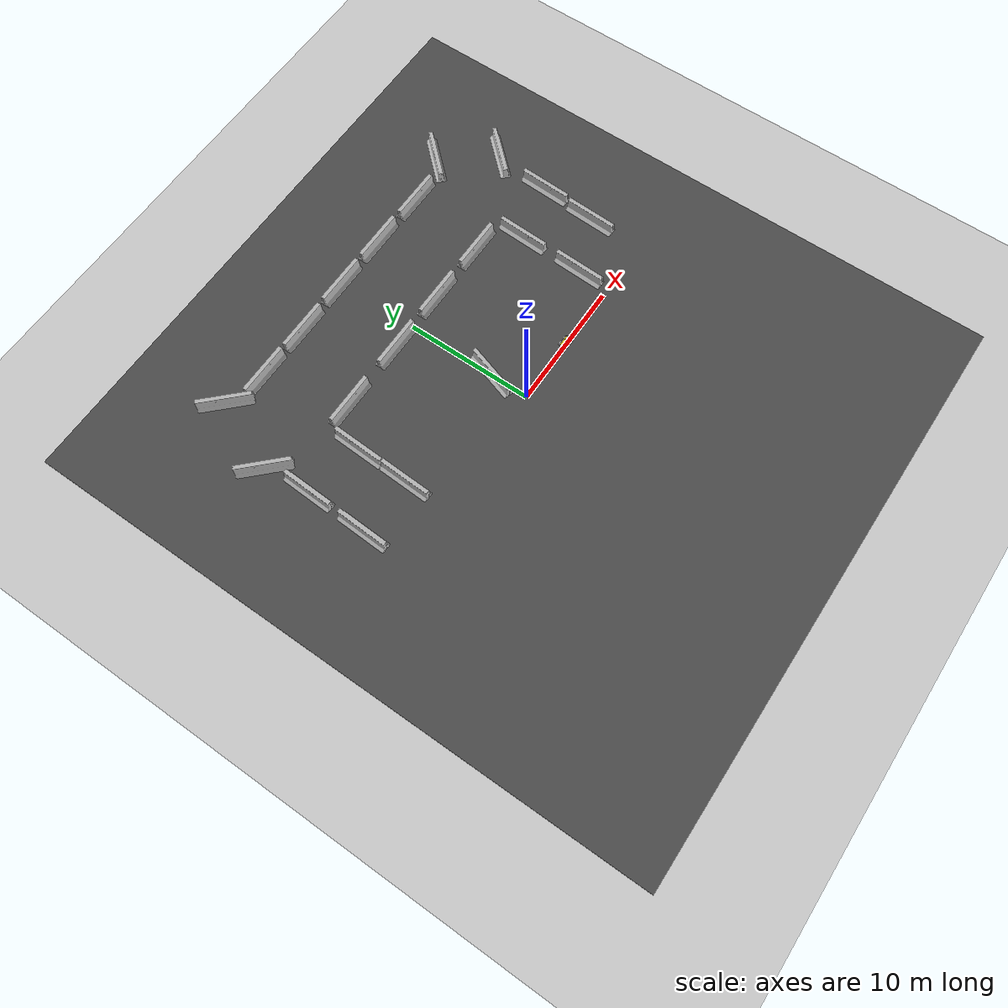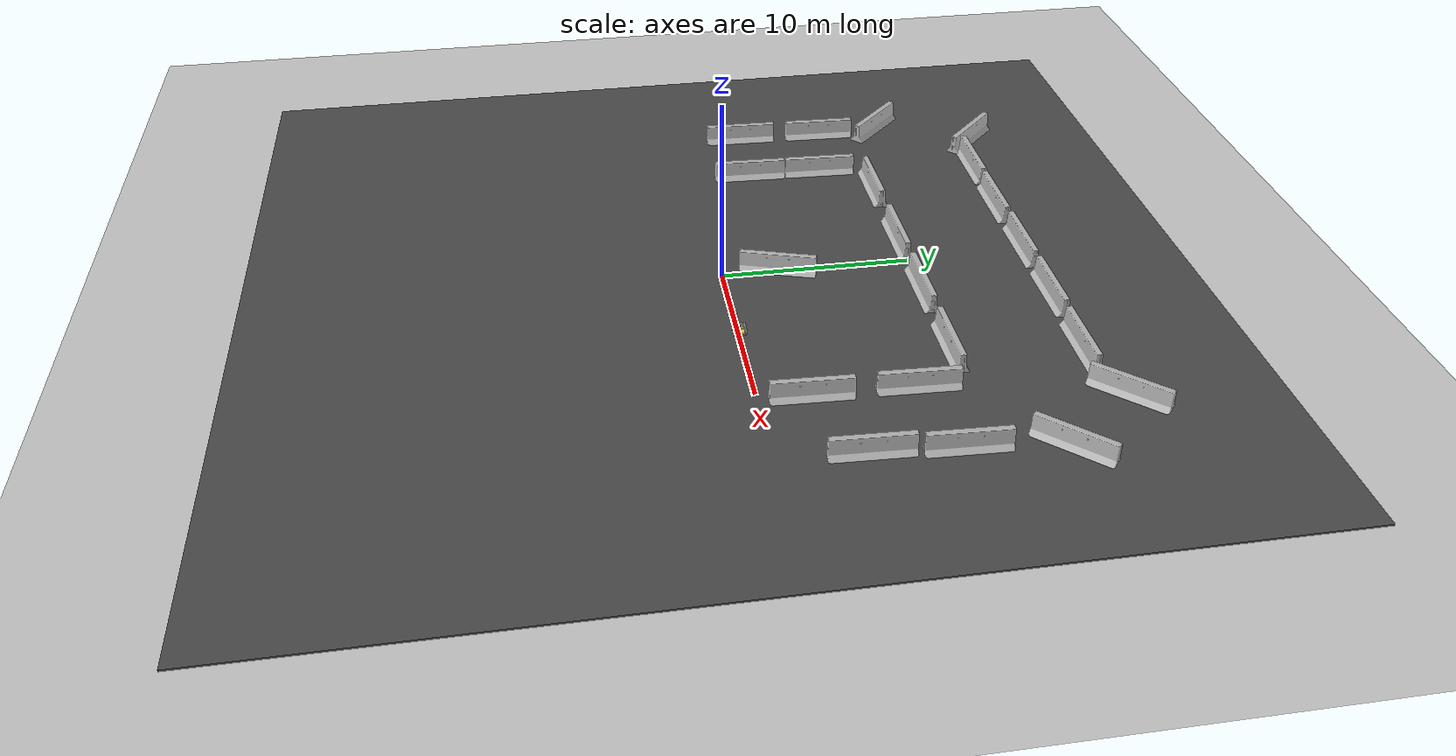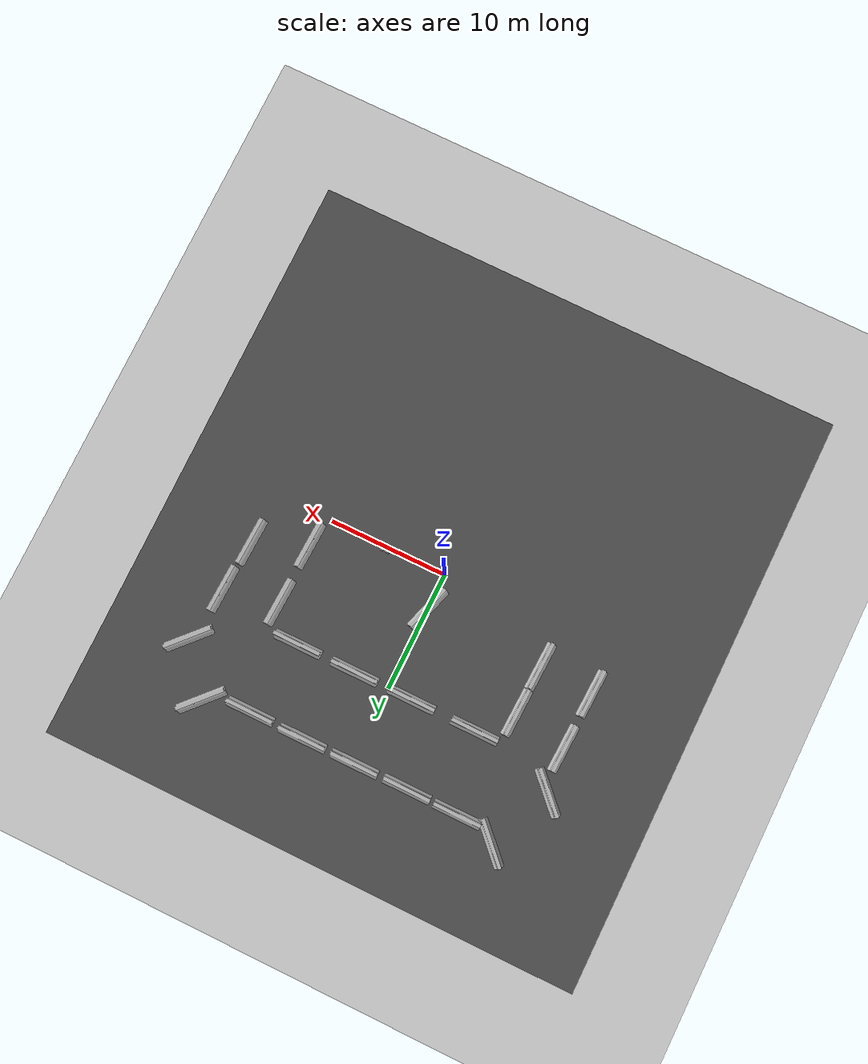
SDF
<sdf version="1.6">
 <world name="default">
  <model name="ground_plane">
   <static>1</static>
   <link name="link">
    <collision name="collision">
     <geometry><plane><normal>0 0 1</normal><size>100 100</size></plane></geometry>
     <surface><friction><ode><mu>100</mu><mu2>50</mu2></ode></friction></surface>
    </collision>
    <visual name="visual">
     <cast_shadows>0</cast_shadows>
     <geometry><plane><normal>0 0 1</normal><size>100 100</size></plane></geometry>
     <material>
      <script><uri>file://media/materials/scripts/gazebo.material</uri><name>Gazebo/Grey</name></script>
     </material>
    </visual>
    <velocity_decay><linear>0</linear><angular>0</angular></velocity_decay>
   </link>
  </model>
  <model name="jersey_barrier_3">
   <static>1</static>
   <link name="link">
    <visual name="visual">
     <geometry><mesh><uri>model://jersey_barrier/meshes/jersey_barrier.dae</uri></mesh></geometry>
    </visual>
    <collision name="upright">
     <pose>0 0 0.5715 0 -0 0</pose>
     <geometry><box><size>4.06542 0.3063 1.143</size></box></geometry>
    </collision>
    <collision name="base">
     <pose>0 0 0.032258 0 -0 0</pose>
     <geometry><box><size>4.06542 0.8107 0.064516</size></box></geometry>
    </collision>
    <collision name="base2">
     <pose>0 0 0.1 0 -0 0</pose>
     <geometry><box><size>4.06542 0.65 0.1</size></box></geometry>
    </collision>
    <collision name="base3">
     <pose>0 0 0.2 0 -0 0</pose>
     <geometry><box><size>4.06542 0.5 0.1</size></box></geometry>
    </collision>
    <collision name="left-angle">
     <pose>0 -0.224 0.2401 0.9 -0 0</pose>
     <geometry><box><size>4.06542 0.5 0.064516</size></box></geometry>
    </collision>
    <collision name="right-angle">
     <pose>0 0.224 0.2401 -0.9 0 0</pose>
     <geometry><box><size>4.06542 0.5 0.064516</size></box></geometry>
    </collision>
    <velocity_decay><linear>0</linear><angular>0</angular></velocity_decay>
   </link>
   <pose>-7.50675 10 0 0 -0 0</pose>
  </model>
  <model name="jersey_barrier_4">
   <static>1</static>
   <link name="link">
    <visual name="visual">
     <geometry><mesh><uri>model://jersey_barrier/meshes/jersey_barrier.dae</uri></mesh></geometry>
    </visual>
    <collision name="upright">
     <pose>0 0 0.5715 0 -0 0</pose>
     <geometry><box><size>4.06542 0.3063 1.143</size></box></geometry>
    </collision>
    <collision name="base">
     <pose>0 0 0.032258 0 -0 0</pose>
     <geometry><box><size>4.06542 0.8107 0.064516</size></box></geometry>
    </collision>
    <collision name="base2">
     <pose>0 0 0.1 0 -0 0</pose>
     <geometry><box><size>4.06542 0.65 0.1</size></box></geometry>
    </collision>
    <collision name="base3">
     <pose>0 0 0.2 0 -0 0</pose>
     <geometry><box><size>4.06542 0.5 0.1</size></box></geometry>
    </collision>
    <collision name="left-angle">
     <pose>0 -0.224 0.2401 0.9 -0 0</pose>
     <geometry><box><size>4.06542 0.5 0.064516</size></box></geometry>
    </collision>
    <collision name="right-angle">
     <pose>0 0.224 0.2401 -0.9 0 0</pose>
     <geometry><box><size>4.06542 0.5 0.064516</size></box></geometry>
    </collision>
    <velocity_decay><linear>0</linear><angular>0</angular></velocity_decay>
   </link>
   <pose>-2 10 0 0 -0 0</pose>
  </model>
  <model name="jersey_barrier_5">
   <static>1</static>
   <link name="link">
    <visual name="visual">
     <geometry><mesh><uri>model://jersey_barrier/meshes/jersey_barrier.dae</uri></mesh></geometry>
    </visual>
    <collision name="upright">
     <pose>0 0 0.5715 0 -0 0</pose>
     <geometry><box><size>4.06542 0.3063 1.143</size></box></geometry>
    </collision>
    <collision name="base">
     <pose>0 0 0.032258 0 -0 0</pose>
     <geometry><box><size>4.06542 0.8107 0.064516</size></box></geometry>
    </collision>
    <collision name="base2">
     <pose>0 0 0.1 0 -0 0</pose>
     <geometry><box><size>4.06542 0.65 0.1</size></box></geometry>
    </collision>
    <collision name="base3">
     <pose>0 0 0.2 0 -0 0</pose>
     <geometry><box><size>4.06542 0.5 0.1</size></box></geometry>
    </collision>
    <collision name="left-angle">
     <pose>0 -0.224 0.2401 0.9 -0 0</pose>
     <geometry><box><size>4.06542 0.5 0.064516</size></box></geometry>
    </collision>
    <collision name="right-angle">
     <pose>0 0.224 0.2401 -0.9 0 0</pose>
     <geometry><box><size>4.06542 0.5 0.064516</size></box></geometry>
    </collision>
    <velocity_decay><linear>0</linear><angular>0</angular></velocity_decay>
   </link>
   <pose>3 10 0 0 -0 0</pose>
  </model>
  <model name="jersey_barrier_6">
   <static>1</static>
   <link name="link">
    <visual name="visual">
     <geometry><mesh><uri>model://jersey_barrier/meshes/jersey_barrier.dae</uri></mesh></geometry>
    </visual>
    <collision name="upright">
     <pose>0 0 0.5715 0 -0 0</pose>
     <geometry><box><size>4.06542 0.3063 1.143</size></box></geometry>
    </collision>
    <collision name="base">
     <pose>0 0 0.032258 0 -0 0</pose>
     <geometry><box><size>4.06542 0.8107 0.064516</size></box></geometry>
    </collision>
    <collision name="base2">
     <pose>0 0 0.1 0 -0 0</pose>
     <geometry><box><size>4.06542 0.65 0.1</size></box></geometry>
    </collision>
    <collision name="base3">
     <pose>0 0 0.2 0 -0 0</pose>
     <geometry><box><size>4.06542 0.5 0.1</size></box></geometry>
    </collision>
    <collision name="left-angle">
     <pose>0 -0.224 0.2401 0.9 -0 0</pose>
     <geometry><box><size>4.06542 0.5 0.064516</size></box></geometry>
    </collision>
    <collision name="right-angle">
     <pose>0 0.224 0.2401 -0.9 0 0</pose>
     <geometry><box><size>4.06542 0.5 0.064516</size></box></geometry>
    </collision>
    <velocity_decay><linear>0</linear><angular>0</angular></velocity_decay>
   </link>
   <pose>8 10 0 0 -0 0</pose>
  </model>
  <model name="asphalt_plane">
   <static>1</static>
   <link name="link">
    <collision name="collision"><geometry><box><size>45.6368 49.6066 0.1</size></box></geometry></collision>
    <visual name="visual">
     <cast_shadows>0</cast_shadows>
     <geometry><box><size>45.6368 49.6066 0.1</size></box></geometry>
     <material>
      <script>
       <uri>model://asphalt_plane/materials/scripts</uri>
       <uri>model://asphalt_plane/materials/textures</uri>
       <name>vrc/asphalt</name>
      </script>
     </material>
    </visual>
    <velocity_decay><linear>0</linear><angular>0</angular></velocity_decay>
   </link>
   <pose>-0.123803 0.022176 0 0 -0 0</pose>
  </model>
  <model name="jersey_barrier_7_clone_0">
   <static>1</static>
   <link name="link">
    <visual name="visual">
     <geometry><mesh><uri>model://jersey_barrier/meshes/jersey_barrier.dae</uri></mesh></geometry>
    </visual>
    <collision name="upright">
     <pose>0 0 0.5715 0 -0 0</pose>
     <geometry><box><size>4.06542 0.3063 1.143</size></box></geometry>
    </collision>
    <collision name="base">
     <pose>0 0 0.032258 0 -0 0</pose>
     <geometry><box><size>4.06542 0.8107 0.064516</size></box></geometry>
    </collision>
    <collision name="base2">
     <pose>0 0 0.1 0 -0 0</pose>
     <geometry><box><size>4.06542 0.65 0.1</size></box></geometry>
    </collision>
    <collision name="base3">
     <pose>0 0 0.2 0 -0 0</pose>
     <geometry><box><size>4.06542 0.5 0.1</size></box></geometry>
    </collision>
    <collision name="left-angle">
     <pose>0 -0.224 0.2401 0.9 -0 0</pose>
     <geometry><box><size>4.06542 0.5 0.064516</size></box></geometry>
    </collision>
    <collision name="right-angle">
     <pose>0 0.224 0.2401 -0.9 0 0</pose>
     <geometry><box><size>4.06542 0.5 0.064516</size></box></geometry>
    </collision>
   </link>
   <pose>10.7124 2.55807 0 0 -0 1.5316</pose>
  </model>
  <model name="jersey_barrier_7_clone_1">
   <static>1</static>
   <link name="link">
    <visual name="visual">
     <geometry><mesh><uri>model://jersey_barrier/meshes/jersey_barrier.dae</uri></mesh></geometry>
    </visual>
    <collision name="upright">
     <pose>0 0 0.5715 0 -0 0</pose>
     <geometry><box><size>4.06542 0.3063 1.143</size></box></geometry>
    </collision>
    <collision name="base">
     <pose>0 0 0.032258 0 -0 0</pose>
     <geometry><box><size>4.06542 0.8107 0.064516</size></box></geometry>
    </collision>
    <collision name="base2">
     <pose>0 0 0.1 0 -0 0</pose>
     <geometry><box><size>4.06542 0.65 0.1</size></box></geometry>
    </collision>
    <collision name="base3">
     <pose>0 0 0.2 0 -0 0</pose>
     <geometry><box><size>4.06542 0.5 0.1</size></box></geometry>
    </collision>
    <collision name="left-angle">
     <pose>0 -0.224 0.2401 0.9 -0 0</pose>
     <geometry><box><size>4.06542 0.5 0.064516</size></box></geometry>
    </collision>
    <collision name="right-angle">
     <pose>0 0.224 0.2401 -0.9 0 0</pose>
     <geometry><box><size>4.06542 0.5 0.064516</size></box></geometry>
    </collision>
   </link>
   <pose>10.8167 7.65912 0 0 -0 1.5316</pose>
  </model>
  <model name="jersey_barrier_7_clone_1_clone">
   <static>1</static>
   <link name="link">
    <visual name="visual">
     <geometry><mesh><uri>model://jersey_barrier/meshes/jersey_barrier.dae</uri></mesh></geometry>
    </visual>
    <collision name="upright">
     <pose>0 0 0.5715 0 -0 0</pose>
     <geometry><box><size>4.06542 0.3063 1.143</size></box></geometry>
    </collision>
    <collision name="base">
     <pose>0 0 0.032258 0 -0 0</pose>
     <geometry><box><size>4.06542 0.8107 0.064516</size></box></geometry>
    </collision>
    <collision name="base2">
     <pose>0 0 0.1 0 -0 0</pose>
     <geometry><box><size>4.06542 0.65 0.1</size></box></geometry>
    </collision>
    <collision name="base3">
     <pose>0 0 0.2 0 -0 0</pose>
     <geometry><box><size>4.06542 0.5 0.1</size></box></geometry>
    </collision>
    <collision name="left-angle">
     <pose>0 -0.224 0.2401 0.9 -0 0</pose>
     <geometry><box><size>4.06542 0.5 0.064516</size></box></geometry>
    </collision>
    <collision name="right-angle">
     <pose>0 0.224 0.2401 -0.9 0 0</pose>
     <geometry><box><size>4.06542 0.5 0.064516</size></box></geometry>
    </collision>
   </link>
   <pose>-9.88681 7.31742 0 0 -0 1.5316</pose>
  </model>
  <model name="jersey_barrier_7_clone_1_clone_1">
   <static>1</static>
   <link name="link">
    <visual name="visual">
     <geometry><mesh><uri>model://jersey_barrier/meshes/jersey_barrier.dae</uri></mesh></geometry>
    </visual>
    <collision name="upright">
     <pose>0 0 0.5715 0 -0 0</pose>
     <geometry><box><size>4.06542 0.3063 1.143</size></box></geometry>
    </collision>
    <collision name="base">
     <pose>0 0 0.032258 0 -0 0</pose>
     <geometry><box><size>4.06542 0.8107 0.064516</size></box></geometry>
    </collision>
    <collision name="base2">
     <pose>0 0 0.1 0 -0 0</pose>
     <geometry><box><size>4.06542 0.65 0.1</size></box></geometry>
    </collision>
    <collision name="base3">
     <pose>0 0 0.2 0 -0 0</pose>
     <geometry><box><size>4.06542 0.5 0.1</size></box></geometry>
    </collision>
    <collision name="left-angle">
     <pose>0 -0.224 0.2401 0.9 -0 0</pose>
     <geometry><box><size>4.06542 0.5 0.064516</size></box></geometry>
    </collision>
    <collision name="right-angle">
     <pose>0 0.224 0.2401 -0.9 0 0</pose>
     <geometry><box><size>4.06542 0.5 0.064516</size></box></geometry>
    </collision>
   </link>
   <pose>-14.3801 8.23059 0 0 -0 1.5316</pose>
  </model>
  <model name="jersey_barrier_7_clone_1_clone_2">
   <static>1</static>
   <link name="link">
    <visual name="visual">
     <geometry><mesh><uri>model://jersey_barrier/meshes/jersey_barrier.dae</uri></mesh></geometry>
    </visual>
    <collision name="upright">
     <pose>0 0 0.5715 0 -0 0</pose>
     <geometry><box><size>4.06542 0.3063 1.143</size></box></geometry>
    </collision>
    <collision name="base">
     <pose>0 0 0.032258 0 -0 0</pose>
     <geometry><box><size>4.06542 0.8107 0.064516</size></box></geometry>
    </collision>
    <collision name="base2">
     <pose>0 0 0.1 0 -0 0</pose>
     <geometry><box><size>4.06542 0.65 0.1</size></box></geometry>
    </collision>
    <collision name="base3">
     <pose>0 0 0.2 0 -0 0</pose>
     <geometry><box><size>4.06542 0.5 0.1</size></box></geometry>
    </collision>
    <collision name="left-angle">
     <pose>0 -0.224 0.2401 0.9 -0 0</pose>
     <geometry><box><size>4.06542 0.5 0.064516</size></box></geometry>
    </collision>
    <collision name="right-angle">
     <pose>0 0.224 0.2401 -0.9 0 0</pose>
     <geometry><box><size>4.06542 0.5 0.064516</size></box></geometry>
    </collision>
   </link>
   <pose>-14.5541 3.41634 0 0 -0 1.5316</pose>
  </model>
  <model name="jersey_barrier_6_clone">
   <static>1</static>
   <link name="link">
    <visual name="visual">
     <geometry><mesh><uri>model://jersey_barrier/meshes/jersey_barrier.dae</uri></mesh></geometry>
    </visual>
    <collision name="upright">
     <pose>0 0 0.5715 0 -0 0</pose>
     <geometry><box><size>4.06542 0.3063 1.143</size></box></geometry>
    </collision>
    <collision name="base">
     <pose>0 0 0.032258 0 -0 0</pose>
     <geometry><box><size>4.06542 0.8107 0.064516</size></box></geometry>
    </collision>
    <collision name="base2">
     <pose>0 0 0.1 0 -0 0</pose>
     <geometry><box><size>4.06542 0.65 0.1</size></box></geometry>
    </collision>
    <collision name="base3">
     <pose>0 0 0.2 0 -0 0</pose>
     <geometry><box><size>4.06542 0.5 0.1</size></box></geometry>
    </collision>
    <collision name="left-angle">
     <pose>0 -0.224 0.2401 0.9 -0 0</pose>
     <geometry><box><size>4.06542 0.5 0.064516</size></box></geometry>
    </collision>
    <collision name="right-angle">
     <pose>0 0.224 0.2401 -0.9 0 0</pose>
     <geometry><box><size>4.06542 0.5 0.064516</size></box></geometry>
    </collision>
    <velocity_decay><linear>0</linear><angular>0</angular></velocity_decay>
   </link>
   <pose>8.97438 16.3625 0 0 -0 0</pose>
  </model>
  <model name="jersey_barrier_6_clone_0">
   <static>1</static>
   <link name="link">
    <visual name="visual">
     <geometry><mesh><uri>model://jersey_barrier/meshes/jersey_barrier.dae</uri></mesh></geometry>
    </visual>
    <collision name="upright">
     <pose>0 0 0.5715 0 -0 0</pose>
     <geometry><box><size>4.06542 0.3063 1.143</size></box></geometry>
    </collision>
    <collision name="base">
     <pose>0 0 0.032258 0 -0 0</pose>
     <geometry><box><size>4.06542 0.8107 0.064516</size></box></geometry>
    </collision>
    <collision name="base2">
     <pose>0 0 0.1 0 -0 0</pose>
     <geometry><box><size>4.06542 0.65 0.1</size></box></geometry>
    </collision>
    <collision name="base3">
     <pose>0 0 0.2 0 -0 0</pose>
     <geometry><box><size>4.06542 0.5 0.1</size></box></geometry>
    </collision>
    <collision name="left-angle">
     <pose>0 -0.224 0.2401 0.9 -0 0</pose>
     <geometry><box><size>4.06542 0.5 0.064516</size></box></geometry>
    </collision>
    <collision name="right-angle">
     <pose>0 0.224 0.2401 -0.9 0 0</pose>
     <geometry><box><size>4.06542 0.5 0.064516</size></box></geometry>
    </collision>
    <velocity_decay><linear>0</linear><angular>0</angular></velocity_decay>
   </link>
   <pose>4.36549 16.4491 0 0 -0 0</pose>
  </model>
  <model name="jersey_barrier_6_clone_1">
   <static>1</static>
   <link name="link">
    <visual name="visual">
     <geometry><mesh><uri>model://jersey_barrier/meshes/jersey_barrier.dae</uri></mesh></geometry>
    </visual>
    <collision name="upright">
     <pose>0 0 0.5715 0 -0 0</pose>
     <geometry><box><size>4.06542 0.3063 1.143</size></box></geometry>
    </collision>
    <collision name="base">
     <pose>0 0 0.032258 0 -0 0</pose>
     <geometry><box><size>4.06542 0.8107 0.064516</size></box></geometry>
    </collision>
    <collision name="base2">
     <pose>0 0 0.1 0 -0 0</pose>
     <geometry><box><size>4.06542 0.65 0.1</size></box></geometry>
    </collision>
    <collision name="base3">
     <pose>0 0 0.2 0 -0 0</pose>
     <geometry><box><size>4.06542 0.5 0.1</size></box></geometry>
    </collision>
    <collision name="left-angle">
     <pose>0 -0.224 0.2401 0.9 -0 0</pose>
     <geometry><box><size>4.06542 0.5 0.064516</size></box></geometry>
    </collision>
    <collision name="right-angle">
     <pose>0 0.224 0.2401 -0.9 0 0</pose>
     <geometry><box><size>4.06542 0.5 0.064516</size></box></geometry>
    </collision>
    <velocity_decay><linear>0</linear><angular>0</angular></velocity_decay>
   </link>
   <pose>-0.186767 16.446 0 0 -0 0</pose>
  </model>
  <model name="jersey_barrier_6_clone_2">
   <static>1</static>
   <link name="link">
    <visual name="visual">
     <geometry><mesh><uri>model://jersey_barrier/meshes/jersey_barrier.dae</uri></mesh></geometry>
    </visual>
    <collision name="upright">
     <pose>0 0 0.5715 0 -0 0</pose>
     <geometry><box><size>4.06542 0.3063 1.143</size></box></geometry>
    </collision>
    <collision name="base">
     <pose>0 0 0.032258 0 -0 0</pose>
     <geometry><box><size>4.06542 0.8107 0.064516</size></box></geometry>
    </collision>
    <collision name="base2">
     <pose>0 0 0.1 0 -0 0</pose>
     <geometry><box><size>4.06542 0.65 0.1</size></box></geometry>
    </collision>
    <collision name="base3">
     <pose>0 0 0.2 0 -0 0</pose>
     <geometry><box><size>4.06542 0.5 0.1</size></box></geometry>
    </collision>
    <collision name="left-angle">
     <pose>0 -0.224 0.2401 0.9 -0 0</pose>
     <geometry><box><size>4.06542 0.5 0.064516</size></box></geometry>
    </collision>
    <collision name="right-angle">
     <pose>0 0.224 0.2401 -0.9 0 0</pose>
     <geometry><box><size>4.06542 0.5 0.064516</size></box></geometry>
    </collision>
    <velocity_decay><linear>0</linear><angular>0</angular></velocity_decay>
   </link>
   <pose>-4.72887 16.4044 0 0 -0 0</pose>
  </model>
  <model name="jersey_barrier_6_clone_3">
   <static>1</static>
   <link name="link">
    <visual name="visual">
     <geometry><mesh><uri>model://jersey_barrier/meshes/jersey_barrier.dae</uri></mesh></geometry>
    </visual>
    <collision name="upright">
     <pose>0 0 0.5715 0 -0 0</pose>
     <geometry><box><size>4.06542 0.3063 1.143</size></box></geometry>
    </collision>
    <collision name="base">
     <pose>0 0 0.032258 0 -0 0</pose>
     <geometry><box><size>4.06542 0.8107 0.064516</size></box></geometry>
    </collision>
    <collision name="base2">
     <pose>0 0 0.1 0 -0 0</pose>
     <geometry><box><size>4.06542 0.65 0.1</size></box></geometry>
    </collision>
    <collision name="base3">
     <pose>0 0 0.2 0 -0 0</pose>
     <geometry><box><size>4.06542 0.5 0.1</size></box></geometry>
    </collision>
    <collision name="left-angle">
     <pose>0 -0.224 0.2401 0.9 -0 0</pose>
     <geometry><box><size>4.06542 0.5 0.064516</size></box></geometry>
    </collision>
    <collision name="right-angle">
     <pose>0 0.224 0.2401 -0.9 0 0</pose>
     <geometry><box><size>4.06542 0.5 0.064516</size></box></geometry>
    </collision>
    <velocity_decay><linear>0</linear><angular>0</angular></velocity_decay>
   </link>
   <pose>-9.0937 16.4454 0 0 -0 0</pose>
  </model>
  <model name="jersey_barrier_7_clone_5">
   <static>1</static>
   <link name="link">
    <visual name="visual">
     <geometry><mesh><uri>model://jersey_barrier/meshes/jersey_barrier.dae</uri></mesh></geometry>
    </visual>
    <collision name="upright">
     <pose>0 0 0.5715 0 -0 0</pose>
     <geometry><box><size>4.06542 0.3063 1.143</size></box></geometry>
    </collision>
    <collision name="base">
     <pose>0 0 0.032258 0 -0 0</pose>
     <geometry><box><size>4.06542 0.8107 0.064516</size></box></geometry>
    </collision>
    <collision name="base2">
     <pose>0 0 0.1 0 -0 0</pose>
     <geometry><box><size>4.06542 0.65 0.1</size></box></geometry>
    </collision>
    <collision name="base3">
     <pose>0 0 0.2 0 -0 0</pose>
     <geometry><box><size>4.06542 0.5 0.1</size></box></geometry>
    </collision>
    <collision name="left-angle">
     <pose>0 -0.224 0.2401 0.9 -0 0</pose>
     <geometry><box><size>4.06542 0.5 0.064516</size></box></geometry>
    </collision>
    <collision name="right-angle">
     <pose>0 0.224 0.2401 -0.9 0 0</pose>
     <geometry><box><size>4.06542 0.5 0.064516</size></box></geometry>
    </collision>
   </link>
   <pose>15.0397 4.35414 0 0 -0 1.5316</pose>
  </model>
  <model name="jersey_barrier_7_clone_6">
   <static>1</static>
   <link name="link">
    <visual name="visual">
     <geometry><mesh><uri>model://jersey_barrier/meshes/jersey_barrier.dae</uri></mesh></geometry>
    </visual>
    <collision name="upright">
     <pose>0 0 0.5715 0 -0 0</pose>
     <geometry><box><size>4.06542 0.3063 1.143</size></box></geometry>
    </collision>
    <collision name="base">
     <pose>0 0 0.032258 0 -0 0</pose>
     <geometry><box><size>4.06542 0.8107 0.064516</size></box></geometry>
    </collision>
    <collision name="base2">
     <pose>0 0 0.1 0 -0 0</pose>
     <geometry><box><size>4.06542 0.65 0.1</size></box></geometry>
    </collision>
    <collision name="base3">
     <pose>0 0 0.2 0 -0 0</pose>
     <geometry><box><size>4.06542 0.5 0.1</size></box></geometry>
    </collision>
    <collision name="left-angle">
     <pose>0 -0.224 0.2401 0.9 -0 0</pose>
     <geometry><box><size>4.06542 0.5 0.064516</size></box></geometry>
    </collision>
    <collision name="right-angle">
     <pose>0 0.224 0.2401 -0.9 0 0</pose>
     <geometry><box><size>4.06542 0.5 0.064516</size></box></geometry>
    </collision>
   </link>
   <pose>15.3673 8.67832 0 0 -0 1.5316</pose>
  </model>
  <model name="jersey_barrier_clone_4_clone_0">
   <static>1</static>
   <link name="link">
    <visual name="visual">
     <geometry><mesh><uri>model://jersey_barrier/meshes/jersey_barrier.dae</uri></mesh></geometry>
    </visual>
    <collision name="upright">
     <pose>0 0 0.5715 0 -0 0</pose>
     <geometry><box><size>4.06542 0.3063 1.143</size></box></geometry>
    </collision>
    <collision name="base">
     <pose>0 0 0.032258 0 -0 0</pose>
     <geometry><box><size>4.06542 0.8107 0.064516</size></box></geometry>
    </collision>
    <collision name="base2">
     <pose>0 0 0.1 0 -0 0</pose>
     <geometry><box><size>4.06542 0.65 0.1</size></box></geometry>
    </collision>
    <collision name="base3">
     <pose>0 0 0.2 0 -0 0</pose>
     <geometry><box><size>4.06542 0.5 0.1</size></box></geometry>
    </collision>
    <collision name="left-angle">
     <pose>0 -0.224 0.2401 0.9 -0 0</pose>
     <geometry><box><size>4.06542 0.5 0.064516</size></box></geometry>
    </collision>
    <collision name="right-angle">
     <pose>0 0.224 0.2401 -0.9 0 0</pose>
     <geometry><box><size>4.06542 0.5 0.064516</size></box></geometry>
    </collision>
    <velocity_decay><linear>0</linear><angular>0</angular></velocity_decay>
   </link>
   <pose>-14.7266 11.8532 0 0 0 -0.792377</pose>
  </model>
  <model name="jersey_barrier_clone_4_clone_1">
   <static>1</static>
   <link name="link">
    <visual name="visual">
     <geometry><mesh><uri>model://jersey_barrier/meshes/jersey_barrier.dae</uri></mesh></geometry>
    </visual>
    <collision name="upright">
     <pose>0 0 0.5715 0 -0 0</pose>
     <geometry><box><size>4.06542 0.3063 1.143</size></box></geometry>
    </collision>
    <collision name="base">
     <pose>0 0 0.032258 0 -0 0</pose>
     <geometry><box><size>4.06542 0.8107 0.064516</size></box></geometry>
    </collision>
    <collision name="base2">
     <pose>0 0 0.1 0 -0 0</pose>
     <geometry><box><size>4.06542 0.65 0.1</size></box></geometry>
    </collision>
    <collision name="base3">
     <pose>0 0 0.2 0 -0 0</pose>
     <geometry><box><size>4.06542 0.5 0.1</size></box></geometry>
    </collision>
    <collision name="left-angle">
     <pose>0 -0.224 0.2401 0.9 -0 0</pose>
     <geometry><box><size>4.06542 0.5 0.064516</size></box></geometry>
    </collision>
    <collision name="right-angle">
     <pose>0 0.224 0.2401 -0.9 0 0</pose>
     <geometry><box><size>4.06542 0.5 0.064516</size></box></geometry>
    </collision>
    <velocity_decay><linear>0</linear><angular>0</angular></velocity_decay>
   </link>
   <pose>-12.4105 17.2728 0 0 0 -0.792377</pose>
  </model>
  <model name="jersey_barrier_clone_4_clone_2_clone_0">
   <static>1</static>
   <link name="link">
    <visual name="visual">
     <geometry><mesh><uri>model://jersey_barrier/meshes/jersey_barrier.dae</uri></mesh></geometry>
    </visual>
    <collision name="upright">
     <pose>0 0 0.5715 0 -0 0</pose>
     <geometry><box><size>4.06542 0.3063 1.143</size></box></geometry>
    </collision>
    <collision name="base">
     <pose>0 0 0.032258 0 -0 0</pose>
     <geometry><box><size>4.06542 0.8107 0.064516</size></box></geometry>
    </collision>
    <collision name="base2">
     <pose>0 0 0.1 0 -0 0</pose>
     <geometry><box><size>4.06542 0.65 0.1</size></box></geometry>
    </collision>
    <collision name="base3">
     <pose>0 0 0.2 0 -0 0</pose>
     <geometry><box><size>4.06542 0.5 0.1</size></box></geometry>
    </collision>
    <collision name="left-angle">
     <pose>0 -0.224 0.2401 0.9 -0 0</pose>
     <geometry><box><size>4.06542 0.5 0.064516</size></box></geometry>
    </collision>
    <collision name="right-angle">
     <pose>0 0.224 0.2401 -0.9 0 0</pose>
     <geometry><box><size>4.06542 0.5 0.064516</size></box></geometry>
    </collision>
    <velocity_decay><linear>0</linear><angular>0</angular></velocity_decay>
   </link>
   <pose>12.8572 17.2331 0 0 -0 0.826051</pose>
  </model>
  <model name="jersey_barrier_clone_4_clone_2_clone_1">
   <static>1</static>
   <link name="link">
    <visual name="visual">
     <geometry><mesh><uri>model://jersey_barrier/meshes/jersey_barrier.dae</uri></mesh></geometry>
    </visual>
    <collision name="upright">
     <pose>0 0 0.5715 0 -0 0</pose>
     <geometry><box><size>4.06542 0.3063 1.143</size></box></geometry>
    </collision>
    <collision name="base">
     <pose>0 0 0.032258 0 -0 0</pose>
     <geometry><box><size>4.06542 0.8107 0.064516</size></box></geometry>
    </collision>
    <collision name="base2">
     <pose>0 0 0.1 0 -0 0</pose>
     <geometry><box><size>4.06542 0.65 0.1</size></box></geometry>
    </collision>
    <collision name="base3">
     <pose>0 0 0.2 0 -0 0</pose>
     <geometry><box><size>4.06542 0.5 0.1</size></box></geometry>
    </collision>
    <collision name="left-angle">
     <pose>0 -0.224 0.2401 0.9 -0 0</pose>
     <geometry><box><size>4.06542 0.5 0.064516</size></box></geometry>
    </collision>
    <collision name="right-angle">
     <pose>0 0.224 0.2401 -0.9 0 0</pose>
     <geometry><box><size>4.06542 0.5 0.064516</size></box></geometry>
    </collision>
    <velocity_decay><linear>0</linear><angular>0</angular></velocity_decay>
   </link>
   <pose>15.9769 13.3489 0 0 -0 0.826051</pose>
  </model>
  <model name="jersey_barrier_7_clone_1_clone_clone">
   <static>1</static>
   <link name="link">
    <visual name="visual">
     <geometry><mesh><uri>model://jersey_barrier/meshes/jersey_barrier.dae</uri></mesh></geometry>
    </visual>
    <collision name="upright">
     <pose>0 0 0.5715 0 -0 0</pose>
     <geometry><box><size>4.06542 0.3063 1.143</size></box></geometry>
    </collision>
    <collision name="base">
     <pose>0 0 0.032258 0 -0 0</pose>
     <geometry><box><size>4.06542 0.8107 0.064516</size></box></geometry>
    </collision>
    <collision name="base2">
     <pose>0 0 0.1 0 -0 0</pose>
     <geometry><box><size>4.06542 0.65 0.1</size></box></geometry>
    </collision>
    <collision name="base3">
     <pose>0 0 0.2 0 -0 0</pose>
     <geometry><box><size>4.06542 0.5 0.1</size></box></geometry>
    </collision>
    <collision name="left-angle">
     <pose>0 -0.224 0.2401 0.9 -0 0</pose>
     <geometry><box><size>4.06542 0.5 0.064516</size></box></geometry>
    </collision>
    <collision name="right-angle">
     <pose>0 0.224 0.2401 -0.9 0 0</pose>
     <geometry><box><size>4.06542 0.5 0.064516</size></box></geometry>
    </collision>
   </link>
   <pose>-10.0171 3.22202 0 0 -0 1.5316</pose>
  </model>
  <model name="husky_ur10">
   <model name="husky">
    <pose>0.073478 -0.007966 -0.116875 0 -0 0</pose>
    <link name="base_link">
     <collision name="collision">
      <pose>0 0 0.1 0 -0 0</pose>
      <geometry><box><size>1.0074 0.5709 0.2675</size></box></geometry>
     </collision>
     <inertial>
      <mass>33.855</mass>
      <pose>-0.085613 -0.00084 0.238145 0 -0 0</pose>
      <inertia>
       <ixx>2.2343</ixx>
       <ixy>-0.023642</ixy>
       <ixz>0.275174</ixz>
       <iyy>3.42518</iyy>
       <iyz>0.00239624</iyz>
       <izz>2.1241</izz>
      </inertia>
     </inertial>
     <visual name="base">
      <geometry><mesh><uri>model://husky/meshes/base_link.stl</uri></mesh></geometry>
      <material><script><name>Gazebo/FlatBlack</name><uri>__default__</uri></script></material>
     </visual>
     <visual name="top_plate">
      <geometry><mesh><uri>model://husky/meshes/top_plate.stl</uri></mesh></geometry>
      <material><script><name>Gazebo/Yellow</name><uri>__default__</uri></script></material>
     </visual>
     <visual name="front_bumper">
      <pose>0.47 0 0.091 0 -0 0</pose>
      <geometry><mesh><uri>model://husky/meshes/bumper.stl</uri></mesh></geometry>
      <material><script><name>Gazebo/FlatBlack</name><uri>__default__</uri></script></material>
     </visual>
     <visual name="rear_bumper">
      <pose>-0.47 0 0.091 0 -0 3.141</pose>
      <geometry><mesh><uri>model://husky/meshes/bumper.stl</uri></mesh></geometry>
      <material><script><name>Gazebo/FlatBlack</name><uri>__default__</uri></script></material>
     </visual>
     <visual name="user_rail">
      <pose>0.272 0 0.245 0 -0 0</pose>
      <geometry><mesh><uri>model://husky/meshes/user_rail.stl</uri></mesh></geometry>
      <material><script><name>Gazebo/Grey</name><uri>__default__</uri></script></material>
     </visual>
    </link>
    <link name="back_left_wheel">
     <pose>-0.256 0.285475 0.035 0 -0 0</pose>
     <inertial>
      <mass>2.6357</mass>
      <inertia>
       <ixx>0.0246688</ixx>
       <ixy>0</ixy>
       <ixz>0</ixz>
       <iyy>0.0246688</iyy>
       <iyz>0</iyz>
       <izz>0.0441058</izz>
      </inertia>
     </inertial>
     <collision name="back_left_wheel_collision">
      <pose>0 0 0 -1.5707 0 0</pose>
      <geometry><cylinder><radius>0.17775</radius><length>0.1143</length></cylinder></geometry>
      <surface>
       <friction><ode><mu>100000</mu><mu2>100000</mu2><slip1>0</slip1><slip2>0</slip2></ode></friction>
      </surface>
     </collision>
     <visual name="back_left_wheel">
      <pose>0 0 0 -3.14159 0 0</pose>
      <geometry><mesh><uri>model://husky/meshes/wheel.stl</uri></mesh></geometry>
      <material><script><name>Gazebo/Grey</name><uri>__default__</uri></script></material>
     </visual>
    </link>
    <joint name="back_left_joint" type="revolute">
     <parent>base_link</parent>
     <child>back_left_wheel</child>
     <axis>
      <xyz>0 1 0</xyz>
      <use_parent_model_frame>1</use_parent_model_frame>
      <limit><lower>-1e+16</lower><upper>1e+16</upper></limit>
      <dynamics><spring_reference>0</spring_reference><spring_stiffness>0</spring_stiffness></dynamics>
     </axis>
     <physics><ode><limit><cfm>0</cfm><erp>0.9</erp></limit></ode></physics>
    </joint>
    <link name="back_right_wheel">
     <pose>-0.256 -0.285475 0.035 0 -0 0</pose>
     <inertial>
      <mass>2.6357</mass>
      <inertia>
       <ixx>0.0246688</ixx>
       <ixy>0</ixy>
       <ixz>0</ixz>
       <iyy>0.0246688</iyy>
       <iyz>0</iyz>
       <izz>0.0441058</izz>
      </inertia>
     </inertial>
     <collision name="back_right_wheel_collision">
      <pose>0 0 0 -1.5707 0 0</pose>
      <geometry><cylinder><radius>0.17775</radius><length>0.1143</length></cylinder></geometry>
      <surface>
       <friction><ode><mu>100000</mu><mu2>100000</mu2><slip1>0</slip1><slip2>0</slip2></ode></friction>
      </surface>
     </collision>
     <visual name="back_right_wheel">
      <pose>0 0 0 -3.14159 0 0</pose>
      <geometry><mesh><uri>model://husky/meshes/wheel.stl</uri></mesh></geometry>
      <material><script><name>Gazebo/Grey</name><uri>__default__</uri></script></material>
     </visual>
    </link>
    <joint name="back_right_joint" type="revolute">
     <parent>base_link</parent>
     <child>back_right_wheel</child>
     <axis>
      <xyz>0 1 0</xyz>
      <use_parent_model_frame>1</use_parent_model_frame>
      <limit><lower>-1e+16</lower><upper>1e+16</upper></limit>
      <dynamics><spring_reference>0</spring_reference><spring_stiffness>0</spring_stiffness></dynamics>
     </axis>
     <physics><ode><limit><cfm>0</cfm><erp>0.9</erp></limit></ode></physics>
    </joint>
    <link name="front_left_wheel">
     <pose>0.256 0.285475 0.035 0 -0 0</pose>
     <inertial>
      <mass>2.6357</mass>
      <inertia>
       <ixx>0.0246688</ixx>
       <ixy>0</ixy>
       <ixz>0</ixz>
       <iyy>0.0246688</iyy>
       <iyz>0</iyz>
       <izz>0.0441058</izz>
      </inertia>
     </inertial>
     <collision name="front_left_wheel_collision">
      <pose>0 0 0 -1.5707 0 0</pose>
      <geometry><cylinder><radius>0.17775</radius><length>0.1143</length></cylinder></geometry>
      <surface>
       <friction><ode><mu>100000</mu><mu2>100000</mu2><slip1>0</slip1><slip2>0</slip2></ode></friction>
      </surface>
     </collision>
     <visual name="front_left_wheel">
      <pose>0 0 0 -3.14159 0 0</pose>
      <geometry><mesh><uri>model://husky/meshes/wheel.stl</uri></mesh></geometry>
      <material><script><name>Gazebo/Grey</name><uri>__default__</uri></script></material>
     </visual>
    </link>
    <joint name="front_left_joint" type="revolute">
     <parent>base_link</parent>
     <child>front_left_wheel</child>
     <axis>
      <xyz>0 1 0</xyz>
      <use_parent_model_frame>1</use_parent_model_frame>
      <limit><lower>-1e+16</lower><upper>1e+16</upper></limit>
      <dynamics><spring_reference>0</spring_reference><spring_stiffness>0</spring_stiffness></dynamics>
     </axis>
     <physics><ode><limit><cfm>0</cfm><erp>0.9</erp></limit></ode></physics>
    </joint>
    <link name="front_right_wheel">
     <pose>0.256 -0.285475 0.035 0 -0 0</pose>
     <inertial>
      <mass>2.6357</mass>
      <inertia>
       <ixx>0.0246688</ixx>
       <ixy>0</ixy>
       <ixz>0</ixz>
       <iyy>0.0246688</iyy>
       <iyz>0</iyz>
       <izz>0.0441058</izz>
      </inertia>
     </inertial>
     <collision name="front_right_wheel_collision">
      <pose>0 0 0 -1.5707 0 0</pose>
      <geometry><cylinder><radius>0.17775</radius><length>0.1143</length></cylinder></geometry>
      <surface>
       <friction><ode><mu>100000</mu><mu2>100000</mu2><slip1>0</slip1><slip2>0</slip2></ode></friction>
      </surface>
     </collision>
     <visual name="front_right_wheel">
      <pose>0 0 0 -3.14159 0 0</pose>
      <geometry><mesh><uri>model://husky/meshes/wheel.stl</uri></mesh></geometry>
      <material><script><name>Gazebo/Grey</name><uri>__default__</uri></script></material>
     </visual>
    </link>
    <joint name="front_right_joint" type="revolute">
     <parent>base_link</parent>
     <child>front_right_wheel</child>
     <axis>
      <xyz>0 1 0</xyz>
      <use_parent_model_frame>1</use_parent_model_frame>
      <limit><lower>-1e+16</lower><upper>1e+16</upper></limit>
      <dynamics><spring_reference>0</spring_reference><spring_stiffness>0</spring_stiffness></dynamics>
     </axis>
     <physics><ode><limit><cfm>0</cfm><erp>0.9</erp></limit></ode></physics>
    </joint>
    <plugin name="husky_diff_controller" filename="libhusky_gazebo_plugins.so">
     <alwaysOn>1</alwaysOn>
     <updateRate>100.0</updateRate>
     <backLeftJoint>back_left_joint</backLeftJoint>
     <backRightJoint>back_right_joint</backRightJoint>
     <frontLeftJoint>front_left_joint</frontLeftJoint>
     <frontRightJoint>front_right_joint</frontRightJoint>
     <wheelSeparation>0.5709</wheelSeparation>
     <wheelDiameter>0.3555</wheelDiameter>
     <torque>35</torque>
    </plugin>
   </model>
   <model name="ur10">
    <link name="base">
     <inertial>
      <mass>4</mass>
      <inertia>
       <ixx>0.00610633</ixx>
       <ixy>0</ixy>
       <ixz>0</ixz>
       <iyy>0.00610633</iyy>
       <iyz>0</iyz>
       <izz>0.01125</izz>
      </inertia>
     </inertial>
     <collision name="collision">
      <pose>0 0 0.019 0 -0 0</pose>
      <geometry><cylinder><radius>0.075</radius><length>0.038</length></cylinder></geometry>
     </collision>
     <visual name="visual"><geometry><mesh><uri>model://ur10/meshes/base.dae</uri></mesh></geometry></visual>
    </link>
    <link name="shoulder">
     <pose>0 0 0.1273 0 -0 0</pose>
     <inertial>
      <mass>7.778</mass>
      <inertia>
       <ixx>0.0314743</ixx>
       <ixy>0</ixy>
       <ixz>0</ixz>
       <iyy>0.0314743</iyy>
       <iyz>0</iyz>
       <izz>0.0218756</izz>
      </inertia>
     </inertial>
     <collision name="collision">
      <geometry><cylinder><radius>0.075</radius><length>0.177</length></cylinder></geometry>
     </collision>
     <visual name="visual"><geometry><mesh><uri>model://ur10/meshes/shoulder.dae</uri></mesh></geometry></visual>
    </link>
    <link name="upper_arm">
     <pose>0 0.220941 0.1273 3.14159 1.57079 3.14159</pose>
     <inertial>
      <pose>0 0 0.306 0 -0 0</pose>
      <mass>12.93</mass>
      <inertia>
       <ixx>0.421754</ixx>
       <ixy>0</ixy>
       <ixz>0</ixz>
       <iyy>0.421754</iyy>
       <iyz>0</iyz>
       <izz>0.0363656</izz>
      </inertia>
     </inertial>
     <collision name="collision1">
      <pose>0 -0.045 0 1.5707 -0 0</pose>
      <geometry><cylinder><radius>0.075</radius><length>0.177</length></cylinder></geometry>
     </collision>
     <collision name="collision2">
      <pose>0 -0.0436 0.32 0 -0 1.5707</pose>
      <geometry><cylinder><radius>0.058</radius><length>0.461</length></cylinder></geometry>
     </collision>
     <collision name="collision3">
      <pose>0 -0.04 0.613 1.5707 -0 0</pose>
      <geometry><cylinder><radius>0.058</radius><length>0.129</length></cylinder></geometry>
     </collision>
     <visual name="visual"><geometry><mesh><uri>model://ur10/meshes/upperarm.dae</uri></mesh></geometry></visual>
    </link>
    <link name="forearm">
     <pose>0.612 0.049041 0.1273 3.14159 1.57079 3.14159</pose>
     <inertial>
      <pose>0 0 0.28615 0 -0 0</pose>
      <mass>3.87</mass>
      <inertia>
       <ixx>0.11107</ixx>
       <ixy>0</ixy>
       <ixz>0</ixz>
       <iyy>0.11107</iyy>
       <iyz>0</iyz>
       <izz>0.0108844</izz>
      </inertia>
     </inertial>
     <collision name="collision1">
      <pose>0 0 0.001 1.5707 -0 0</pose>
      <geometry><cylinder><radius>0.058</radius><length>0.136</length></cylinder></geometry>
     </collision>
     <collision name="collision2">
      <pose>0 0 0.305 0 -0 1.5707</pose>
      <geometry><cylinder><radius>0.045</radius><length>0.447</length></cylinder></geometry>
     </collision>
     <collision name="collision3">
      <pose>0 0.001 0.5735 1.5707 -0 0</pose>
      <geometry><cylinder><radius>0.045</radius><length>0.119</length></cylinder></geometry>
     </collision>
     <visual name="visua"><geometry><mesh><uri>model://ur10/meshes/forearm.dae</uri></mesh></geometry></visual>
    </link>
    <link name="wrist_1">
     <pose>1.1843 0.049041 0.1273 3.14159 -0 3.14159</pose>
     <inertial>
      <mass>1.96</mass>
      <inertia>
       <ixx>0.00510825</ixx>
       <ixy>0</ixy>
       <ixz>0</ixz>
       <iyy>0.00510825</iyy>
       <iyz>0</iyz>
       <izz>0.0055125</izz>
      </inertia>
     </inertial>
     <collision name="collision">
      <pose>0 0.115 0.0025 0 -0 0</pose>
      <geometry><cylinder><radius>0.0455</radius><length>0.119</length></cylinder></geometry>
     </collision>
     <visual name="visual"><geometry><mesh><uri>model://ur10/meshes/wrist1.dae</uri></mesh></geometry></visual>
    </link>
    <link name="wrist_2">
     <pose>1.1843 0.163941 0.1273 3.14159 -0 3.14159</pose>
     <inertial>
      <mass>1.96</mass>
      <inertia>
       <ixx>0.00510825</ixx>
       <ixy>0</ixy>
       <ixz>0</ixz>
       <iyy>0.00510825</iyy>
       <iyz>0</iyz>
       <izz>0.0055125</izz>
      </inertia>
     </inertial>
     <collision name="collision">
      <pose>0 0.002 0.11659 1.5707 -0 0</pose>
      <geometry><cylinder><radius>0.0455</radius><length>0.119</length></cylinder></geometry>
     </collision>
     <visual name="visual"><geometry><mesh><uri>model://ur10/meshes/wrist2.dae</uri></mesh></geometry></visual>
    </link>
    <link name="wrist_3">
     <pose>1.1843 0.163941 0.0116 3.14159 -0 3.14159</pose>
     <inertial>
      <mass>0.202</mass>
      <inertia>
       <ixx>0.000526462</ixx>
       <ixy>0</ixy>
       <ixz>0</ixz>
       <iyy>0.000526462</iyy>
       <iyz>0</iyz>
       <izz>0.000568125</izz>
      </inertia>
     </inertial>
     <collision name="collision">
      <pose>0 0.0765 0 1.5707 -0 0</pose>
      <geometry><cylinder><radius>0.045</radius><length>0.031</length></cylinder></geometry>
     </collision>
     <visual name="visual"><geometry><mesh><uri>model://ur10/meshes/wrist3.dae</uri></mesh></geometry></visual>
    </link>
    <joint name="shoulder_pan" type="revolute">
     <child>shoulder</child>
     <parent>base</parent>
     <axis>
      <xyz>0 0 1</xyz>
      <limit><lower>-6.28319</lower><upper>6.28319</upper><effort>330</effort><velocity>2.16</velocity></limit>
      <use_parent_model_frame>1</use_parent_model_frame>
      <dynamics><spring_reference>0</spring_reference><spring_stiffness>0</spring_stiffness></dynamics>
     </axis>
    </joint>
    <joint name="shoulder_lift" type="revolute">
     <child>upper_arm</child>
     <parent>shoulder</parent>
     <axis>
      <xyz>0 1 0</xyz>
      <limit><lower>-6.28319</lower><upper>6.28319</upper><effort>330</effort><velocity>2.16</velocity></limit>
      <use_parent_model_frame>1</use_parent_model_frame>
      <dynamics><spring_reference>0</spring_reference><spring_stiffness>0</spring_stiffness></dynamics>
     </axis>
    </joint>
    <joint name="elbow" type="revolute">
     <child>forearm</child>
     <parent>upper_arm</parent>
     <axis>
      <xyz>0 1 0</xyz>
      <limit><lower>-6.28319</lower><upper>6.28319</upper><effort>150</effort><velocity>3.15</velocity></limit>
      <use_parent_model_frame>1</use_parent_model_frame>
      <dynamics><spring_reference>0</spring_reference><spring_stiffness>0</spring_stiffness></dynamics>
     </axis>
    </joint>
    <joint name="wrist_1" type="revolute">
     <child>wrist_1</child>
     <parent>forearm</parent>
     <axis>
      <xyz>0 1 0</xyz>
      <limit><lower>-6.28319</lower><upper>6.28319</upper><effort>54</effort><velocity>3.2</velocity></limit>
      <use_parent_model_frame>1</use_parent_model_frame>
      <dynamics><spring_reference>0</spring_reference><spring_stiffness>0</spring_stiffness></dynamics>
     </axis>
    </joint>
    <joint name="wrist_2" type="revolute">
     <child>wrist_2</child>
     <parent>wrist_1</parent>
     <axis>
      <xyz>0 0 -1</xyz>
      <limit><lower>-6.28319</lower><upper>6.28319</upper><effort>54</effort><velocity>3.2</velocity></limit>
      <use_parent_model_frame>1</use_parent_model_frame>
      <dynamics><spring_reference>0</spring_reference><spring_stiffness>0</spring_stiffness></dynamics>
     </axis>
    </joint>
    <joint name="wrist_3" type="revolute">
     <child>wrist_3</child>
     <parent>wrist_2</parent>
     <axis>
      <xyz>0 1 0</xyz>
      <limit><lower>-6.28319</lower><upper>6.28319</upper><effort>54</effort><velocity>3.2</velocity></limit>
      <use_parent_model_frame>1</use_parent_model_frame>
      <dynamics><spring_reference>0</spring_reference><spring_stiffness>0</spring_stiffness></dynamics>
     </axis>
    </joint>
    <pose>-0.073478 0.007961 0.116875 0 -0 0</pose>
   </model>
   <joint name="base_link_JOINT_0" type="revolute">
    <parent>husky::base_link</parent>
    <child>ur10::base</child>
    <axis>
     <xyz>0 0 1</xyz>
     <use_parent_model_frame>0</use_parent_model_frame>
     <limit>
      <lower>-1.79769e+308</lower>
      <upper>1.79769e+308</upper>
      <effort>-1</effort>
      <velocity>-1</velocity>
     </limit>
     <dynamics>
      <spring_reference>0</spring_reference>
      <spring_stiffness>0</spring_stiffness>
      <damping>0</damping>
     </dynamics>
    </axis>
    <physics>
     <ode><limit><cfm>0</cfm><erp>0.2</erp></limit><suspension><cfm>0</cfm><erp>0.2</erp></suspension></ode>
    </physics>
   </joint>
   <static>0</static>
   <pose>5.19385 0.050917 0.30972 -2e-05 0.000128 3.11936</pose>
  </model>
  <model name="jersey_barrier_8_clone">
   <static>1</static>
   <link name="link">
    <visual name="visual">
     <geometry><mesh><uri>model://jersey_barrier/meshes/jersey_barrier.dae</uri></mesh></geometry>
    </visual>
    <collision name="upright">
     <pose>0 0 0.5715 0 -0 0</pose>
     <geometry><box><size>4.06542 0.3063 1.143</size></box></geometry>
    </collision>
    <collision name="base">
     <pose>0 0 0.032258 0 -0 0</pose>
     <geometry><box><size>4.06542 0.8107 0.064516</size></box></geometry>
    </collision>
    <collision name="base2">
     <pose>0 0 0.1 0 -0 0</pose>
     <geometry><box><size>4.06542 0.65 0.1</size></box></geometry>
    </collision>
    <collision name="base3">
     <pose>0 0 0.2 0 -0 0</pose>
     <geometry><box><size>4.06542 0.5 0.1</size></box></geometry>
    </collision>
    <collision name="left-angle">
     <pose>0 -0.224 0.2401 0.9 -0 0</pose>
     <geometry><box><size>4.06542 0.5 0.064516</size></box></geometry>
    </collision>
    <collision name="right-angle">
     <pose>0 0.224 0.2401 -0.9 0 0</pose>
     <geometry><box><size>4.06542 0.5 0.064516</size></box></geometry>
    </collision>
   </link>
   <pose>-0.008512 2.98581 0 0 -0 -1.87722</pose>
  </model>
 </world>
</sdf>
